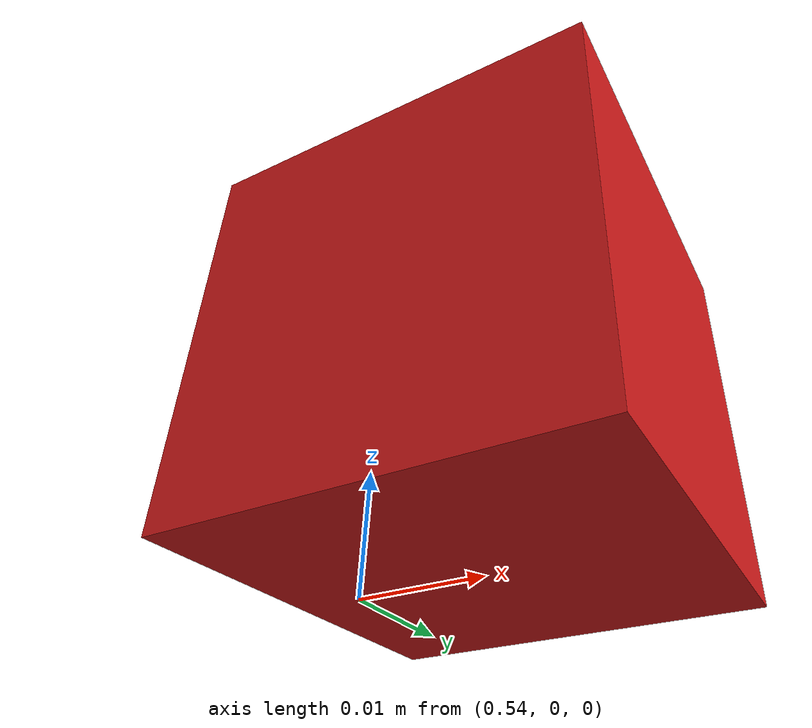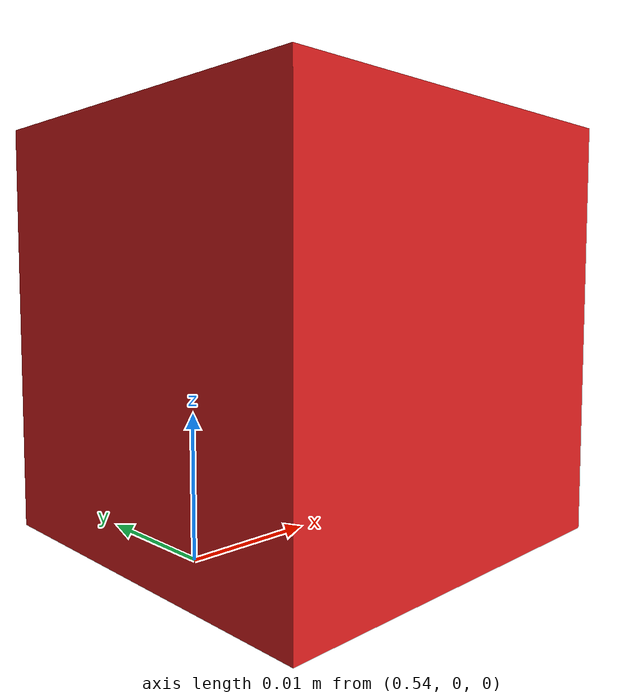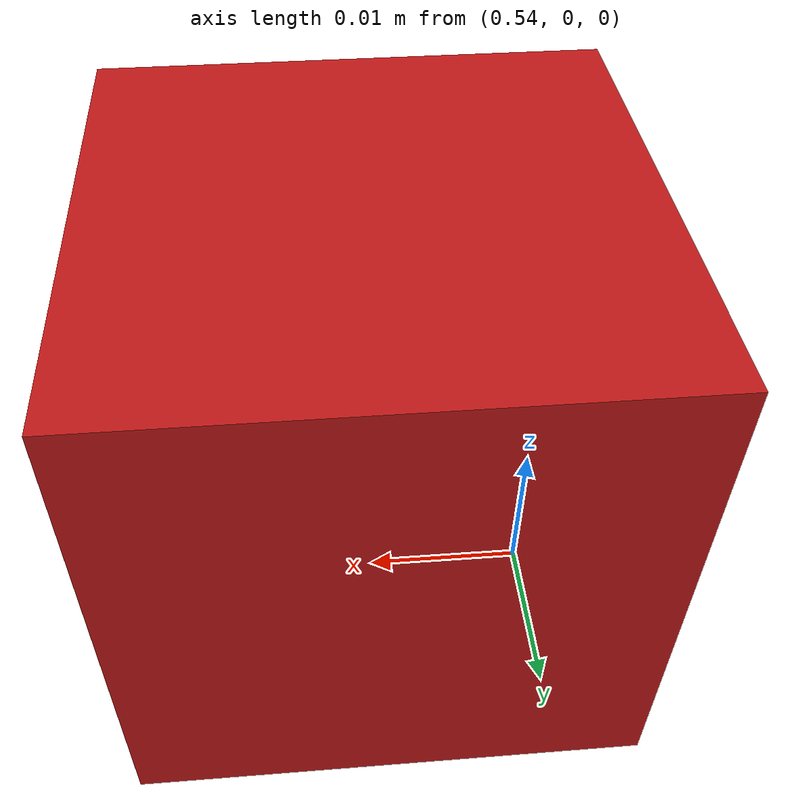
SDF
<?xml version="1.0"?>
<sdf version="1.9">
  <model name="pick_object">
    <pose>0.55 0.0 0.015 0 0 0</pose>
    <link name="object_link">
      <inertial>
        <mass>0.05</mass>
        <inertia>
          <ixx>7.5e-6</ixx>
          <iyy>7.5e-6</iyy>
          <izz>7.5e-6</izz>
          <ixy>0</ixy>
          <ixz>0</ixz>
          <iyz>0</iyz>
        </inertia>
      </inertial>
      <visual name="visual">
        <geometry>
          <box>
            <size>0.03 0.03 0.03</size>
          </box>
        </geometry>
        <material>
          <ambient>0.8 0.1 0.1 1.0</ambient>
          <diffuse>0.8 0.1 0.1 1.0</diffuse>
        </material>
      </visual>
      <collision name="collision">
        <geometry>
          <box>
            <size>0.03 0.03 0.03</size>
          </box>
        </geometry>
        <surface>
          <friction>
            <ode>
              <mu>1.0</mu>
              <mu2>1.0</mu2>
            </ode>
          </friction>
        </surface>
      </collision>
    </link>
  </model>
</sdf>
